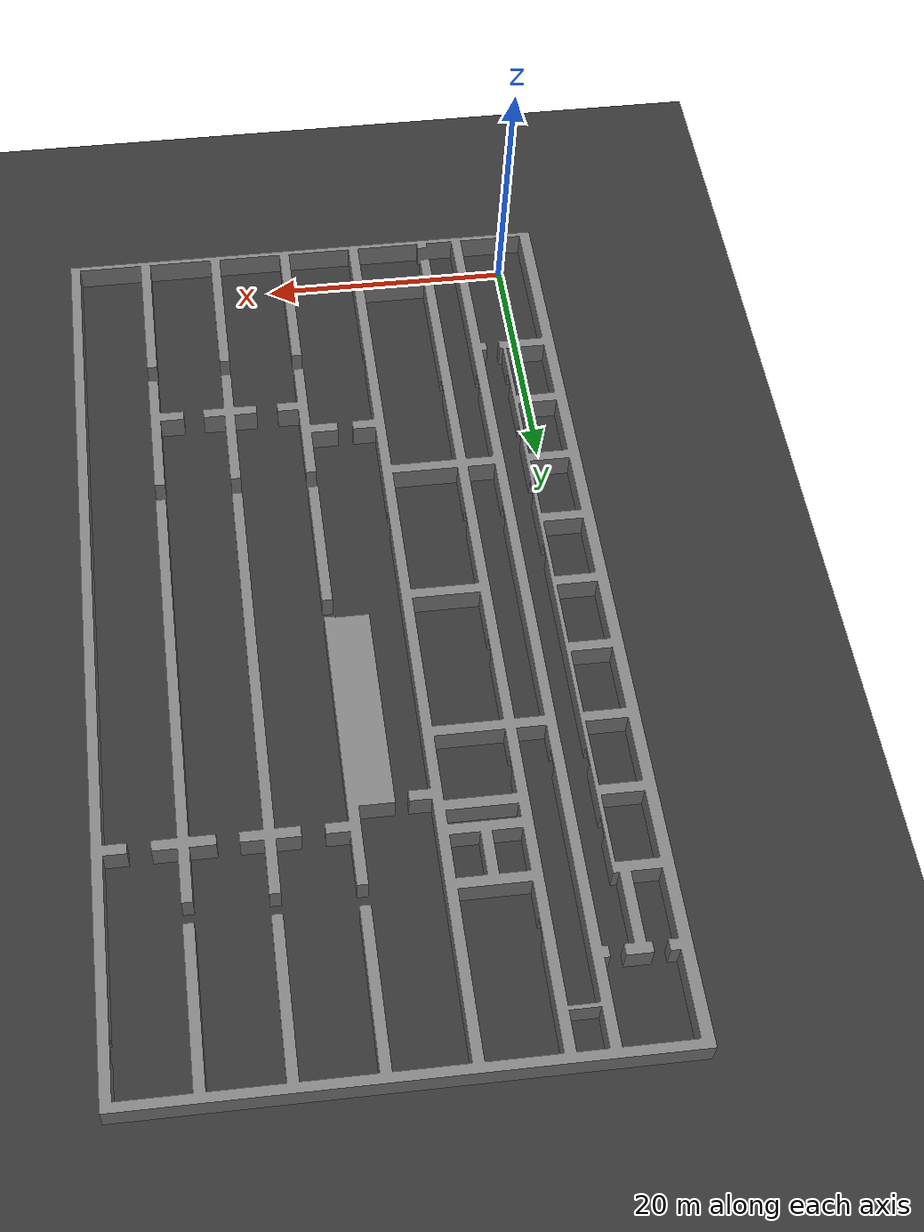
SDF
<?xml version="1.0" ?>
<sdf version="1.8">
  <world name="chernobyl_shelter_world">

<gui fullscreen="0">
      <plugin filename="MinimalScene" name="3D View">
        <gz-gui>
          <title>3D View</title>
          <property type="bool" key="showTitleBar">false</property>
          <property type="string" key="state">docked</property>
        </gz-gui>
        <engine>ogre2</engine>
        <scene>scene</scene>
        <camera_pose>-10 0 10 0 0.5 0</camera_pose>
      </plugin>
      <plugin filename="GzSceneManager" name="Scene Manager">
        <gz-gui><property type="bool" key="showTitleBar">false</property><property type="string" key="state">docked</property></gz-gui>
      </plugin>
      <plugin filename="InteractiveViewControl" name="Interactive view control">
        <gz-gui><property type="bool" key="showTitleBar">false</property><property type="string" key="state">docked</property></gz-gui>
      </plugin>

      <plugin filename="Teleop" name="Teleop">
        <gz-gui>
          <property type="string" key="state">docked</property>
        </gz-gui>
        <topic>/cmd_vel</topic>
      </plugin>

      <plugin filename="WorldControl" name="World control">
        <gz-gui>
          <title>World control</title>
          <property type="bool" key="showTitleBar">false</property>
          <property type="bool" key="resizable">false</property>
          <property type="double" key="height">72</property>
          <property type="double" key="width">121</property>
          <property type="double" key="z">1</property>
          <property type="string" key="state">floating</property>
          <anchors target="3D View">
            <line own="left" target="left"/>
            <line own="bottom" target="bottom"/>
          </anchors>
        </gz-gui>
        <play_pause>true</play_pause>
        <step>true</step>
        <start_paused>false</start_paused>
      </plugin>

      <plugin filename="WorldStats" name="World stats">
        <gz-gui>
          <title>World stats</title>
          <property type="bool" key="showTitleBar">false</property>
          <property type="bool" key="resizable">false</property>
          <property type="double" key="height">110</property>
          <property type="double" key="width">290</property>
          <property type="double" key="z">1</property>
          <property type="string" key="state">floating</property>
          <anchors target="3D View">
            <line own="right" target="right"/>
            <line own="bottom" target="bottom"/>
          </anchors>
        </gz-gui>
      </plugin>

      <plugin filename="EntityTree" name="Entity tree">
        <gz-gui>
          <property type="string" key="state">docked</property>
        </gz-gui>
      </plugin>

      <plugin filename="ComponentInspector" name="Component inspector">
        <gz-gui>
          <property type="string" key="state">docked</property>
        </gz-gui>
      </plugin>

      <plugin filename="TransformControl" name="Transform control">
        <gz-gui>
          <property type="string" key="state">docked</property>
        </gz-gui>
      </plugin>

      </gui>

     <physics name="1ms" type="ignored">
      <max_step_size>0.001</max_step_size>
      <real_time_factor>1.0</real_time_factor>
    </physics>
    <plugin filename="gz-sim-physics-system" name="gz::sim::systems::Physics"/>
    <plugin filename="gz-sim-user-commands-system" name="gz::sim::systems::UserCommands"/>
    <plugin filename="gz-sim-scene-broadcaster-system" name="gz::sim::systems::SceneBroadcaster"/>

    <scene>
      <ambient>0.6 0.6 0.6 1</ambient>
      <background>0.4 0.6 0.8 1</background>
      <grid>true</grid> </scene>

    <light type="directional" name="sun">
      <cast_shadows>true</cast_shadows>
      <pose>0 0 10 0 0 0</pose>
      <diffuse>0.9 0.9 0.9 1</diffuse>
      <specular>0.2 0.2 0.2 1</specular>
      <direction>-0.5 0.5 -0.9</direction>
    </light>

    <model name="ground_plane">
      <static>true</static>
      <pose>20 40 0 0 0 0</pose>
      <link name="link">
        <collision name="collision">
          <geometry><plane><normal>0 0 1</normal><size>60 100</size></plane></geometry>
        </collision>
        <visual name="visual">
          <geometry><plane><normal>0 0 1</normal><size>60 100</size></plane></geometry>
          <material>
            <ambient>0.2 0.2 0.2 1</ambient>
            <diffuse>0.2 0.2 0.2 1</diffuse>
          </material>
        </visual>
      </link>
    </model>

    <model name="shelter_walls">
      <static>true</static>
      <pose>-3 -3 0 0 0 0</pose>
      <link name="walls_link">
        <collision name="collision">
          <geometry>
            <mesh>
              <uri>model://fcm_digital_twin/worlds/shelter.STL</uri>
              <scale>1 1 1</scale>
            </mesh>
          </geometry>
        </collision>
        <visual name="visual">
          <geometry>
            <mesh>
              <uri>model://fcm_digital_twin/worlds/shelter.STL</uri>
              <scale>1 1 1</scale>
            </mesh>
          </geometry>
          <material>
            <ambient>0.5 0.5 0.5 1</ambient>
            <diffuse>0.5 0.5 0.5 1</diffuse>
          </material>
        </visual>
      </link>
    </model>

    </world>
</sdf>
